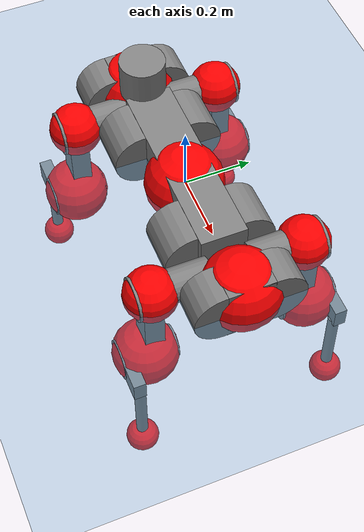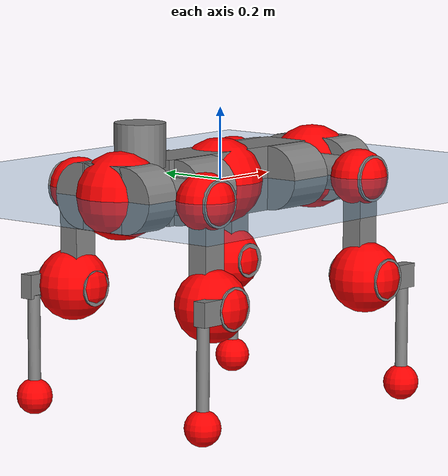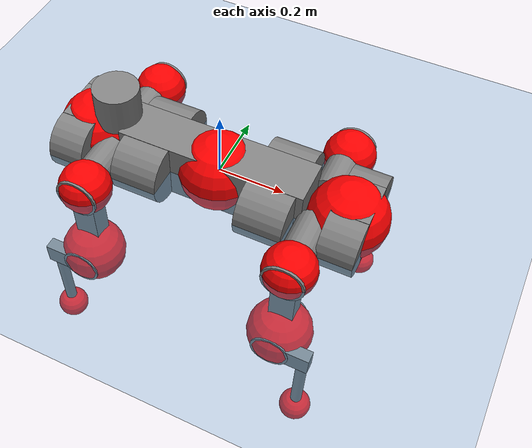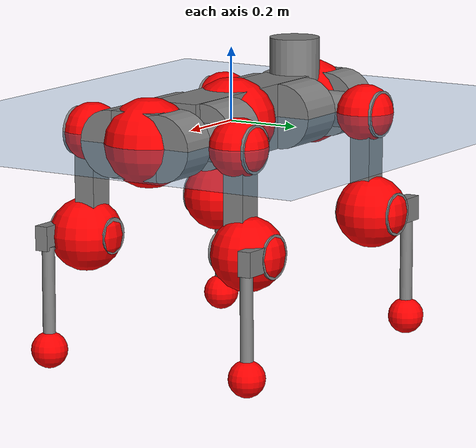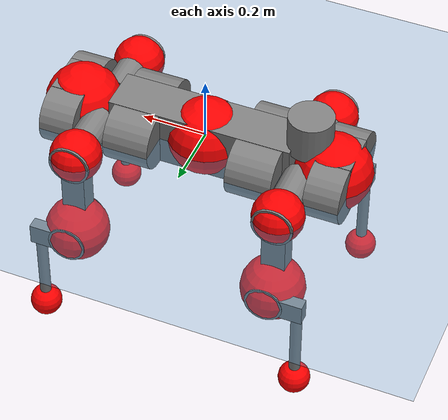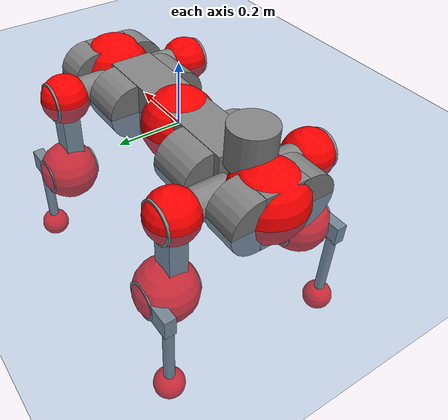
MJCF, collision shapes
<mujoco model="anymal_c">
  <compiler angle="radian" assetdir="assets" balanceinertia="true" inertiafromgeom="false"/>

  <option timestep="0.005" density="1.2" viscosity="2e-05"/>

  <size nkey="1"/>

  <visual>
    <quality shadowsize="8192"/>
    <map shadowclip="0.5"/>
  </visual>

  <default>
    <default class="/">
      <material specular="0" shininess="0.25"/>
      <geom contype="0" conaffinity="0" group="1" solref="-1000 -80"/>
      <site size="0.01 0.005 0.005" group="5"/>
      <general forcelimited="true" forcerange="-80 80" biastype="affine" gainprm="80" biasprm="0 -80 -2"/>
      <default class="anymal_c">
        <joint armature="0.01" damping="0.01" frictionloss="0.1"/>
        <default class="visual">
          <geom type="mesh" group="2"/>
          <default class="visual_zflip"/>
        </default>
        <default class="collision">
          <geom type="cylinder" group="3"/>
          <default class="foot">
            <geom size="0.03 0 0" type="sphere" condim="6" priority="1" friction="0.8 0.02 0.01" solimp="0.015 1 0.03"/>
          </default>
        </default>
      </default>
      <default class="reward_collision_sphere">
        <geom group="5" rgba="1 0 0 1"/>
      </default>
    </default>
  </default>

  <asset>
    <texture type="skybox" colorspace="auto" name="//unnamed_texture_0" builtin="gradient" rgb1="0.95 0.95 0.95" rgb2="0.95 0.95 0.95" width="100" height="600"/>
    <texture type="2d" colorspace="auto" name="texplane" builtin="checker" rgb1="0.345 0.575 0.748" rgb2="0.345 0.575 0.748" markrgb="1 1 1" width="512" height="512"/>
    <texture type="2d" colorspace="linear" name="base" file="base.png"/>
    <texture type="2d" colorspace="linear" name="top_shell" file="top_shell.png"/>
    <texture type="2d" colorspace="linear" name="bottom_shell" file="bottom_shell.png"/>
    <texture type="2d" colorspace="linear" name="remote" file="remote.png"/>
    <texture type="2d" colorspace="linear" name="hatch" file="hatch.png"/>
    <texture type="2d" colorspace="linear" name="handle" file="handle.png"/>
    <texture type="2d" colorspace="linear" name="face" file="face.png"/>
    <texture type="2d" colorspace="linear" name="battery" file="battery.png"/>
    <texture type="2d" colorspace="linear" name="lidar_cage" file="lidar_cage.png"/>
    <texture type="2d" colorspace="linear" name="depth_camera" file="depth_camera.png"/>
    <texture type="2d" colorspace="linear" name="wide_angle_camera" file="wide_angle_camera.png"/>
    <texture type="2d" colorspace="linear" name="lidar" file="lidar.png"/>
    <texture type="2d" colorspace="linear" name="drive" file="drive.png"/>
    <texture type="2d" colorspace="linear" name="hip_l" file="hip_l.png"/>
    <texture type="2d" colorspace="linear" name="shank_l" file="shank_l.png"/>
    <texture type="2d" colorspace="linear" name="foot" file="foot.png"/>
    <texture type="2d" colorspace="linear" name="thigh" file="thigh.png"/>
    <texture type="2d" colorspace="linear" name="shank_r" file="shank_r.png"/>
    <texture type="2d" colorspace="linear" name="hip_r" file="hip_r.png"/>
    <material name="MatPlane" class="/" texture="texplane" texuniform="true" texrepeat="2 2" specular="0.9" shininess="0.5"/>
    <material name="black_plastic" class="/" rgba="0.007 0.007 0.007 1"/>
    <material name="green" class="/" rgba="0.052 0.178 0.033 1"/>
    <material name="red" class="/" rgba="0.178 0.006 0.005 1"/>
    <material name="yellow" class="/" rgba="0.178 0.119 0.006 1"/>
    <material name="lwl" class="/" rgba="0.8 0.8 0.8 1"/>
    <material name="base" class="/" texture="base"/>
    <material name="top_shell" class="/" texture="top_shell"/>
    <material name="bottom_shell" class="/" texture="bottom_shell"/>
    <material name="hip_l" class="/" texture="hip_l"/>
    <material name="thigh" class="/" texture="thigh"/>
    <material name="shank_l" class="/" texture="shank_l"/>
    <material name="foot" class="/" texture="foot"/>
    <material name="hip_r" class="/" texture="hip_r"/>
    <material name="shank" class="/" texture="shank_r"/>
    <material name="hatch" class="/" texture="hatch"/>
    <material name="remote" class="/" texture="remote"/>
    <material name="handle" class="/" texture="handle"/>
    <material name="face" class="/" texture="face"/>
    <material name="depth_camera" class="/" texture="depth_camera"/>
    <material name="wide_angle_camera" class="/" texture="wide_angle_camera"/>
    <material name="battery" class="/" texture="battery"/>
    <material name="lidar_cage" class="/" texture="lidar_cage"/>
    <material name="lidar" class="/" texture="lidar"/>
    <material name="drive" class="/" texture="drive"/>
    <mesh name="base_0" class="/" file="base_0.obj"/>
    <mesh name="base_1" class="/" file="base_1.obj"/>
    <mesh name="base_2" class="/" file="base_2.obj"/>
    <mesh name="base_3" class="/" file="base_3.obj"/>
    <mesh name="base_4" class="/" file="base_4.obj"/>
    <mesh name="base_5" class="/" file="base_5.obj"/>
    <mesh name="top_shell" class="/" file="top_shell.obj"/>
    <mesh name="bottom_shell" class="/" file="bottom_shell.obj"/>
    <mesh name="remote" class="/" file="remote.obj"/>
    <mesh name="handle" class="/" file="handle.obj"/>
    <mesh name="face" class="/" file="face.obj"/>
    <mesh name="wide_angle_camera" class="/" file="wide_angle_camera.obj"/>
    <mesh name="depth_camera" class="/" file="depth_camera.obj"/>
    <mesh name="battery" class="/" file="battery.obj"/>
    <mesh name="lidar_cage" class="/" file="lidar_cage.obj"/>
    <mesh name="lidar" class="/" file="lidar.obj"/>
    <mesh name="drive" class="/" file="drive.obj"/>
    <mesh name="hip_l" class="/" file="hip_l.obj"/>
    <mesh name="thigh" class="/" file="thigh.obj"/>
    <mesh name="shank_l" class="/" file="shank_l.obj"/>
    <mesh name="foot" class="/" file="foot.obj"/>
    <mesh name="hip_r" class="/" file="hip_r.obj"/>
    <mesh name="hatch" class="/" file="hatch.obj"/>
    <mesh name="shank_r" class="/" file="shank_r.obj"/>
  </asset>

  <worldbody>
    <geom name="floor" class="/" size="100 100 0.125" type="plane" group="0" material="MatPlane"/>
    <light name="toplight_shadow" class="/" pos="0 0 5" dir="0.0990148 0.0990148 -0.990148" type="directional" ambient="0.04 0.04 0.04" diffuse="0.55 0.55 0.55" specular="0.12 0.12 0.12"/>
    <light name="toplight_fill" class="/" pos="0 0 5" dir="0.0990148 0.0990148 -0.990148" type="directional" castshadow="false" ambient="0.04 0.04 0.04" diffuse="0.3 0.3 0.3" specular="0.08 0.08 0.08"/>
    <body name="trunk" childclass="anymal_c" pos="-0.00456639 -0.000924817 -0.00154171" quat="0.999999 0.00131504 0.000874514 0.000407682">
      <inertial pos="0.00610865 0.00144944 0.0443418" quat="0.496976 0.49177 0.50345 0.507656" mass="19.9802" diaginertia="0.36671 1.03953 0.191404"/>
      <joint name="//unnamed_joint_0" type="free" armature="0" damping="0" frictionloss="0"/>
      <geom name="//unnamed_geom_1" class="visual" material="green" mesh="base_0"/>
      <geom name="//unnamed_geom_2" class="visual" material="yellow" mesh="base_1"/>
      <geom name="//unnamed_geom_3" class="visual" material="red" mesh="base_2"/>
      <geom name="//unnamed_geom_4" class="visual" material="black_plastic" mesh="base_3"/>
      <geom name="//unnamed_geom_5" class="visual" material="lwl" mesh="base_4"/>
      <geom name="//unnamed_geom_6" class="visual" material="base" mesh="base_5"/>
      <geom name="trunk_1" class="collision" size="0.286302 0.0691073 0.0888522" type="box"/>
      <geom name="trunk_2" class="collision" size="0.0888522 0.0715754" pos="0.193776 0.0773391 0" quat="0.707107 0 0.707107 0"/>
      <geom name="trunk_3" class="collision" size="0.0888522 0.0715754" pos="-0.193776 0.0773391 0" quat="0.707107 0 0.707107 0"/>
      <geom name="trunk_4" class="collision" size="0.0888522 0.0715754" pos="0.193776 -0.0773391 0" quat="0.707107 0 0.707107 0"/>
      <geom name="trunk_5" class="collision" size="0.0888522 0.0715754" pos="-0.193776 -0.0773391 0" quat="0.707107 0 0.707107 0"/>
      <geom name="//unnamed_geom_12" class="visual" material="top_shell" mesh="top_shell"/>
      <geom name="//unnamed_geom_13" class="visual" material="bottom_shell" mesh="bottom_shell"/>
      <geom name="//unnamed_geom_14" class="visual" material="remote" mesh="remote"/>
      <geom name="//unnamed_geom_15" class="visual" material="handle" mesh="handle"/>
      <geom name="//unnamed_geom_16" class="visual" pos="0.369289 0 0" quat="1 0 0 0" material="face" mesh="face"/>
      <geom name="trunk_6" class="collision" size="0.0542986 0.0691073 0.0888522" pos="0.41829 0 0" type="box"/>
      <geom name="//unnamed_geom_18" class="collision" size="0.0888522 0.0542986" pos="0.41829 0.0773391 0" quat="0.707107 0 0.707107 0"/>
      <geom name="//unnamed_geom_19" class="collision" size="0.0888522 0.0542986" pos="0.41829 -0.0773391 0" quat="0.707107 0 0.707107 0"/>
      <geom name="//unnamed_geom_20" class="visual" pos="0.411299 0 -0.0287767" quat="0.965926 0 0.258819 0" material="depth_camera" mesh="depth_camera"/>
      <geom name="//unnamed_geom_21" class="visual" pos="0.457045 0 0.0144606" material="wide_angle_camera" mesh="wide_angle_camera"/>
      <geom name="//unnamed_geom_22" class="visual_zflip" pos="-0.369289 0 0" quat="0 0 0 1" material="face" mesh="face"/>
      <geom name="trunk_7" class="collision" size="0.0542986 0.0691073 0.0888522" pos="-0.41829 0 0" quat="0 0 0 1" type="box"/>
      <geom name="//unnamed_geom_24" class="collision" size="0.0888522 0.0542986" pos="-0.41829 -0.0773391 0" quat="0 -0.707107 0 0.707107"/>
      <geom name="//unnamed_geom_25" class="collision" size="0.0888522 0.0542986" pos="-0.41829 0.0773391 0" quat="0 -0.707107 0 0.707107"/>
      <geom name="//unnamed_geom_26" class="visual" pos="-0.411299 0 -0.0287767" quat="0 -0.258819 0 0.965926" material="depth_camera" mesh="depth_camera"/>
      <geom name="//unnamed_geom_27" class="visual_zflip" pos="-0.457045 0 0.0144606" quat="0 0 0 1" material="wide_angle_camera" mesh="wide_angle_camera"/>
      <geom name="//unnamed_geom_28" class="visual" material="battery" mesh="battery"/>
      <geom name="//unnamed_geom_29" class="visual" pos="0 0.0872865 0.0274911" quat="0.683013 -0.183013 0.183013 0.683013" material="depth_camera" mesh="depth_camera"/>
      <geom name="//unnamed_geom_30" class="visual" pos="0 -0.0872865 0.0274911" quat="0.683013 0.183013 0.183013 -0.683013" material="depth_camera" mesh="depth_camera"/>
      <geom name="//unnamed_geom_31" class="visual" pos="-0.324297 0 0.0709988" quat="1 0 0 0" material="lidar_cage" mesh="lidar_cage"/>
      <geom name="trunk_8" class="collision" size="0.0691073 0.0592348" pos="-0.324297 0 0.128957"/>
      <geom name="//unnamed_geom_33" class="visual" pos="-0.324297 8.40426e-05 0.137361" quat="0.707107 0 0 -0.707107" material="lidar" mesh="lidar"/>
      <geom name="//unnamed_geom_34" class="visual" pos="0.267189 0.114854 2.39559e-09" quat="0.258819 0.965926 0 0" material="drive" mesh="drive"/>
      <geom name="//unnamed_geom_35" class="visual" pos="0.267189 -0.114854 -2.39559e-09" quat="0.258819 -0.965926 0 0" material="drive" mesh="drive"/>
      <geom name="//unnamed_geom_36" class="visual" pos="-0.267189 0.114854 -2.39559e-09" quat="0 0 0.965926 -0.258819" material="drive" mesh="drive"/>
      <geom name="//unnamed_geom_37" class="visual" pos="-0.267189 -0.114854 2.39559e-09" quat="0 0 -0.965926 -0.258819" material="drive" mesh="drive"/>
      <geom name="//unnamed_geom_38" class="visual" pos="0.103347 0 0.0705158" quat="1 0 0 0" material="hatch" mesh="hatch"/>
      <geom name="//unnamed_geom_39" class="reward_collision_sphere" size="0.11847"/>
      <geom name="//unnamed_geom_40" class="reward_collision_sphere" size="0.11847" pos="0.400917 0 0"/>
      <geom name="//unnamed_geom_41" class="reward_collision_sphere" size="0.11847" pos="-0.400917 0 0"/>
      <site name="imu" pos="0.215763 0.0140989 0.0303535" size="0.00987247"/>
      <camera name="track" pos="0 -2.20969 0" quat="0.707107 0.707107 0 0" mode="trackcom"/>
      <camera name="ego_camera" pos="0.400917 0 -0.0386388" quat="-0.5 -0.5 0.5 0.5"/>
      <body name="LF_HIP" pos="0.267979 0.112851 0.00136754" quat="0.259069 0.965858 0.000411807 -0.000713615">
        <inertial pos="0.0532708 -0.0160531 -0.0099345" quat="-0.128189 0.705108 -0.132757 0.684664" mass="2.70708" diaginertia="0.00319449 0.00847853 0.00276635"/>
        <joint name="LF_HAA" pos="0 0 0" axis="0.999773 0.0186762 0.010259" range="-0.801911 0.450146" armature="0.0102653" damping="0.0168714" frictionloss="0.0968092"/>
        <geom name="//unnamed_geom_42" class="visual" pos="0 0.000140922 -2.31463e-05" quat="0.258819 -0.965926 0 0" material="hip_l" mesh="hip_l"/>
        <geom name="//unnamed_geom_43" class="visual" pos="0.0533665 -0.0674321 -0.0379047" quat="0.183013 -0.683013 0.683013 0.183013" material="drive" mesh="drive"/>
        <geom name="//unnamed_geom_44" class="collision" size="0.0493623 0.0691073" pos="0.0533665 -0.0132137 -0.00667002" quat="-0.353553 -0.612372 0.612372 -0.353553"/>
        <body name="LF_THIGH" pos="0.0549222 -0.0809122 -0.0393617" quat="0.183585 -0.683509 0.682336 0.183113">
          <inertial pos="0.0269781 -9.02924e-05 -0.23425" quat="0.993286 -0.00511595 -0.0794066 0.0839718" mass="2.95203" diaginertia="0.0174275 0.0502632 0.00333075"/>
          <joint name="LF_HFE" pos="0 0 0" axis="0.99995 0.00933471 -0.00346071" stiffness="0.02361" range="-3.11099 3.1437" armature="0.00893752" damping="0.00273628" frictionloss="0.0873216"/>
          <geom name="//unnamed_geom_45" class="visual" pos="-0.00425613 -6.70666e-06 0" quat="0.707107 0 0 -0.707107" material="thigh" mesh="thigh"/>
          <geom name="//unnamed_geom_46" class="collision" size="0.064171 0.0394899" pos="0.035637 0 0" quat="0.5 0.5 -0.5 -0.5"/>
          <geom name="//unnamed_geom_47" class="collision" size="0.0370218 0.0296174 0.139512" pos="0.0267278 0 -0.136505" quat="0.707107 0 0 -0.707107" type="box"/>
          <geom name="//unnamed_geom_48" class="visual" pos="0.0893599 0 -0.275301" quat="1 0 0 0" material="drive" mesh="drive"/>
          <geom name="//unnamed_geom_49" class="collision" size="0.0493623 0.0691073" pos="0.0269951 0 -0.275301" quat="0.707107 0 0.707107 0"/>
          <geom name="//unnamed_geom_50" class="reward_collision_sphere" size="0.0789797" pos="0.0222732 0 0"/>
          <body name="LF_SHANK" pos="0.0917699 0.00308048 -0.276543" quat="1 -0.000110879 0.000140059 1.84475e-06">
            <inertial pos="0.00656813 -0.0667001 -0.0780423" quat="0.992437 -0.120872 -0.00832198 -0.0197565" mass="0.562667" diaginertia="0.00531602 0.0143054 0.000911485"/>
            <joint name="LF_KFE" pos="0 0 0" axis="0.999931 0.00413993 -0.0109591" range="-3.07789 3.1511" armature="0.0104395" damping="0.0146381" frictionloss="0.104368"/>
            <geom name="//unnamed_geom_51" class="visual" pos="-0.00138783 -0.00739998 0" quat="0.707107 0 0 -0.707107" material="shank_l" mesh="shank_l"/>
            <geom name="LF_kfe_act" class="collision" size="0.0592348 0.0197449" pos="0.0178185 0 0" quat="0.5 0.5 -0.5 -0.5"/>
            <geom name="//unnamed_geom_53" class="collision" size="0.0567657 0.0333196 0.0187577" pos="0.0178185 -0.0635274 0" quat="0.5 0.5 -0.5 -0.5" type="box"/>
            <geom name="//unnamed_geom_54" class="visual" pos="0.0116269 -0.0995557 -0.326469" quat="0.382683 0 0 -0.92388" material="foot" mesh="foot"/>
            <geom name="LF_calf" class="collision" size="0.0172768 0.139451" pos="0.0116266 -0.097171 -0.163234" quat="0.707107 0 0 -0.707107"/>
            <geom name="LF_foot" class="foot" size="0.0214073" pos="0.0116266 -0.097171 -0.304735" quat="0.707107 0 0 -0.707107"/>
            <geom name="//unnamed_geom_57" class="reward_collision_sphere" size="0.0987247" pos="-0.0445463 0 0"/>
            <geom name="//unnamed_geom_58" class="reward_collision_sphere" size="0.0493623" pos="0.0116266 -0.097171 -0.304735"/>
            <site name="LF_foot" class="foot" pos="0.0116266 -0.097171 -0.304735" quat="0.707107 0 0 -0.707107" size="0.00987247"/>
          </body>
        </body>
      </body>
      <body name="RF_HIP" pos="0.270126 -0.11447 0.00337313" quat="0.258366 -0.966047 -2.57831e-05 0.00038171">
        <inertial pos="0.0517998 0.0195195 -0.00748761" quat="0.132599 0.673319 0.132665 0.715163" mass="2.7047" diaginertia="0.00329189 0.00800892 0.00273488"/>
        <joint name="RF_HAA" pos="0 0 0" axis="0.999989 0.00363343 -0.0028844" range="-0.445706 0.728287" armature="0.0110227" damping="0.0169657" frictionloss="0.108857"/>
        <geom name="//unnamed_geom_59" class="visual" pos="0 -0.000140921 -2.31462e-05" quat="0.258819 0.965926 0 0" material="hip_r" mesh="hip_r"/>
        <geom name="//unnamed_geom_60" class="visual" pos="0.0533665 0.0674321 -0.0379047" quat="0.183013 0.683013 0.683013 -0.183013" material="drive" mesh="drive"/>
        <geom name="//unnamed_geom_61" class="collision" size="0.0493623 0.0691073" pos="0.0533665 0.0132137 -0.00667002" quat="-0.353553 0.612372 0.612372 0.353553"/>
        <body name="RF_THIGH" pos="0.052922 0.0847573 -0.0418263" quat="0.183179 0.682812 0.683146 -0.1831">
          <inertial pos="0.0284039 0.00107013 -0.238443" quat="0.992795 -0.00514775 -0.0806851 0.0884351" mass="2.91324" diaginertia="0.0163952 0.0468592 0.00337566"/>
          <joint name="RF_HFE" pos="0 0 0" axis="0.999998 0.000700498 0.00177022" stiffness="0.00014271" range="-3.18538 3.10945" armature="0.00966472" damping="0.000810263" frictionloss="0.107436"/>
          <geom name="//unnamed_geom_62" class="visual" pos="-0.00425613 -6.70666e-06 0" quat="0.707107 0 0 -0.707107" material="thigh" mesh="thigh"/>
          <geom name="//unnamed_geom_63" class="collision" size="0.064171 0.0394899" pos="0.035637 0 0" quat="0.5 0.5 0.5 0.5"/>
          <geom name="//unnamed_geom_64" class="collision" size="0.0370218 0.0296174 0.139512" pos="0.0267278 0 -0.136505" quat="0.707107 0 0 0.707107" type="box"/>
          <geom name="//unnamed_geom_65" class="visual" pos="0.0893599 0 -0.275301" quat="1 0 0 0" material="drive" mesh="drive"/>
          <geom name="//unnamed_geom_66" class="collision" size="0.0493623 0.0691073" pos="0.0269951 0 -0.275301" quat="0.707107 0 0.707107 0"/>
          <geom name="//unnamed_geom_67" class="reward_collision_sphere" size="0.0789797" pos="0.0222732 0 0"/>
          <body name="RF_SHANK" pos="0.0900454 0.00151871 -0.277869" quat="1 -2.44896e-05 -3.86173e-06 3.72711e-06">
            <inertial pos="0.00593793 0.0684224 -0.0783377" quat="0.992693 0.120012 -0.000433888 0.0125685" mass="0.567114" diaginertia="0.00571728 0.0152812 0.000953817"/>
            <joint name="RF_KFE" pos="0 0 0" axis="0.999829 0.00127822 -0.0184221" stiffness="0.00873902" range="-3.09993 3.12996" armature="0.00865965" damping="0.0012173" frictionloss="0.0887052"/>
            <geom name="//unnamed_geom_68" class="visual" pos="-0.00138782 0.00739997 0" quat="0.707107 0 0 0.707107" material="shank" mesh="shank_r"/>
            <geom name="RF_kfe_act" class="collision" size="0.0592348 0.0197449" pos="0.0178185 0 0" quat="0.5 0.5 0.5 0.5"/>
            <geom name="//unnamed_geom_70" class="collision" size="0.0567657 0.0333196 0.0187577" pos="0.0178185 0.0635274 0" quat="0.5 0.5 0.5 0.5" type="box"/>
            <geom name="//unnamed_geom_71" class="visual" pos="0.0116262 0.0995557 -0.326469" quat="0.382683 0 0 0.92388" material="foot" mesh="foot"/>
            <geom name="RF_calf" class="collision" size="0.0172768 0.139451" pos="0.0116266 0.097171 -0.163234" quat="0.707107 0 0 0.707107"/>
            <geom name="RF_foot" class="foot" size="0.0255028" pos="0.0116266 0.097171 -0.304735" quat="0.707107 0 0 0.707107"/>
            <geom name="//unnamed_geom_74" class="reward_collision_sphere" size="0.0987247" pos="-0.0445463 0 0"/>
            <geom name="//unnamed_geom_75" class="reward_collision_sphere" size="0.0493623" pos="0.0116266 0.097171 -0.304735"/>
            <site name="RF_foot" class="foot" pos="0.0116266 0.097171 -0.304735" quat="0.707107 0 0 0.707107" size="0.00987247"/>
          </body>
        </body>
      </body>
      <body name="LH_HIP" pos="-0.265408 0.115228 0.000686678" quat="0.000169326 0.000341267 0.96588 -0.258991">
        <inertial pos="0.0527819 0.0131238 -0.00724217" quat="0.116894 0.671146 0.120494 0.722066" mass="2.63936" diaginertia="0.00344776 0.00838686 0.00274898"/>
        <joint name="LH_HAA" pos="0 0 0" axis="0.999987 0.00396131 0.00334741" range="-0.537476 0.710082" armature="0.0106369" damping="0" frictionloss="0.085555"/>
        <geom name="//unnamed_geom_76" class="visual" pos="0 -0.000140921 -2.31462e-05" quat="-0.258819 -0.965926 0 0" material="hip_r" mesh="hip_r"/>
        <geom name="//unnamed_geom_77" class="visual" pos="0.0533665 0.0674321 -0.0379047" quat="0.183013 0.683013 0.683013 -0.183013" material="drive" mesh="drive"/>
        <geom name="//unnamed_geom_78" class="collision" size="0.0493623 0.0691073" pos="0.0533665 0.0132137 -0.00667002" quat="-0.353553 0.612372 0.612372 0.353553"/>
        <body name="LH_THIGH" pos="0.0515052 0.0827757 -0.0430451" quat="0.181689 0.68345 0.682978 -0.182829">
          <inertial pos="0.0279591 -5.69071e-05 -0.234831" quat="0.993596 -0.0133292 -0.0768348 0.0817618" mass="2.90431" diaginertia="0.0175787 0.0522386 0.00363241"/>
          <joint name="LH_HFE" pos="0 0 0" axis="0.999999 -0.000698291 0.00121536" range="-3.13217 3.15851" armature="0.00940106" damping="0.00134767" frictionloss="0.0997893"/>
          <geom name="//unnamed_geom_79" class="visual" pos="-0.00425613 -6.70666e-06 0" quat="0.707107 0 0 -0.707107" material="thigh" mesh="thigh"/>
          <geom name="//unnamed_geom_80" class="collision" size="0.064171 0.0394899" pos="0.035637 0 0" quat="0.5 0.5 -0.5 -0.5"/>
          <geom name="//unnamed_geom_81" class="collision" size="0.0370218 0.0296174 0.139512" pos="0.0267278 0 -0.136505" quat="0.707107 0 0 -0.707107" type="box"/>
          <geom name="//unnamed_geom_82" class="visual" pos="0.0893599 0 -0.275301" quat="1 0 0 0" material="drive" mesh="drive"/>
          <geom name="//unnamed_geom_83" class="collision" size="0.0493623 0.0691073" pos="0.0269951 0 -0.275301" quat="0.707107 0 0.707107 0"/>
          <geom name="//unnamed_geom_84" class="reward_collision_sphere" size="0.0789797" pos="0.0222732 0 0"/>
          <body name="LH_SHANK" pos="0.0894705 -0.00076739 -0.272231" quat="1 0.000144247 0.000907172 1.22025e-06">
            <inertial pos="0.00253484 0.0634721 -0.0770782" quat="0.993494 0.110603 -0.000750263 0.0271326" mass="0.58425" diaginertia="0.00580369 0.0157795 0.00102164"/>
            <joint name="LH_KFE" pos="0 0 0" axis="0.999951 0.00458596 0.00872252" stiffness="0.0215222" range="-3.1413 3.17414" armature="0.0102553" damping="0.00708105" frictionloss="0.079436"/>
            <geom name="//unnamed_geom_85" class="visual" pos="-0.00138782 0.00739997 0" quat="-0.707107 0 0 -0.707107" material="shank" mesh="shank_r"/>
            <geom name="LH_kfe_act" class="collision" size="0.0592348 0.0197449" pos="0.0178185 0 0" quat="0.5 0.5 -0.5 -0.5"/>
            <geom name="//unnamed_geom_87" class="collision" size="0.0567657 0.0333196 0.0187577" pos="0.0178185 0.0635274 0" quat="0.5 0.5 -0.5 -0.5" type="box"/>
            <geom name="//unnamed_geom_88" class="visual" pos="0.0116262 0.0995557 -0.326469" quat="-0.382683 0 0 -0.92388" material="foot" mesh="foot"/>
            <geom name="LH_calf" class="collision" size="0.0172768 0.139451" pos="0.0116266 0.097171 -0.163234" quat="0.707107 0 0 -0.707107"/>
            <geom name="LH_foot" class="foot" size="0.029817" pos="0.0116266 0.097171 -0.304735" quat="0.707107 0 0 -0.707107"/>
            <geom name="//unnamed_geom_91" class="reward_collision_sphere" size="0.0987247" pos="-0.0445463 0 0"/>
            <geom name="//unnamed_geom_92" class="reward_collision_sphere" size="0.0493623" pos="0.0116266 0.097171 -0.304735"/>
            <site name="LH_foot" class="foot" pos="0.0116266 0.097171 -0.304735" quat="0.707107 0 0 -0.707107" size="0.00987247"/>
          </body>
        </body>
      </body>
      <body name="RH_HIP" pos="-0.264904 -0.115425 0.00219474" quat="0.00053152 -0.000756588 -0.965514 -0.260348">
        <inertial pos="0.046494 -0.0177562 -0.00417285" quat="-0.129018 0.708636 -0.13602 0.680212" mass="2.67593" diaginertia="0.00329437 0.00805865 0.00270928"/>
        <joint name="RH_HAA" pos="0 0 0" axis="0.99977 -0.0205465 -0.00614286" range="-0.676989 0.539949" armature="0.00904918" damping="0.0047575" frictionloss="0.110714"/>
        <geom name="//unnamed_geom_93" class="visual" pos="0 0.000140922 -2.31463e-05" quat="-0.258819 0.965926 0 0" material="hip_l" mesh="hip_l"/>
        <geom name="//unnamed_geom_94" class="visual" pos="0.0533665 -0.0674321 -0.0379047" quat="-0.183013 0.683013 -0.683013 -0.183013" material="drive" mesh="drive"/>
        <geom name="//unnamed_geom_95" class="collision" size="0.0493623 0.0691073" pos="0.0533665 -0.0132137 -0.00667002" quat="0.353553 0.612372 -0.612372 0.353553"/>
        <body name="RH_THIGH" pos="0.0507585 -0.0769442 -0.0366659" quat="-0.183064 0.683062 -0.682964 -0.18296">
          <inertial pos="0.0260294 -0.000918814 -0.237354" quat="0.993311 -0.00830435 -0.0782268 0.0845274" mass="3.0362" diaginertia="0.0165045 0.0492735 0.00349311"/>
          <joint name="RH_HFE" pos="0 0 0" axis="0.999937 0.0111003 -0.00162656" stiffness="0.00381467" range="-3.13488 3.09742" armature="0.00909629" damping="0.00459575" frictionloss="0.110806"/>
          <geom name="//unnamed_geom_96" class="visual" pos="-0.00425613 -6.70666e-06 0" quat="0.707107 0 0 -0.707107" material="thigh" mesh="thigh"/>
          <geom name="//unnamed_geom_97" class="collision" size="0.064171 0.0394899" pos="0.035637 0 0" quat="0.5 0.5 0.5 0.5"/>
          <geom name="//unnamed_geom_98" class="collision" size="0.0370218 0.0296174 0.139512" pos="0.0267278 0 -0.136505" quat="0.707107 0 0 0.707107" type="box"/>
          <geom name="//unnamed_geom_99" class="visual" pos="0.0893599 0 -0.275301" quat="1 0 0 0" material="drive" mesh="drive"/>
          <geom name="//unnamed_geom_100" class="collision" size="0.0493623 0.0691073" pos="0.0269951 0 -0.275301" quat="0.707107 0 0.707107 0"/>
          <geom name="//unnamed_geom_101" class="reward_collision_sphere" size="0.0789797" pos="0.0222732 0 0"/>
          <body name="RH_SHANK" pos="0.0881195 0.00229761 -0.272907" quat="1 5.65968e-06 0.000120488 -2.99793e-05">
            <inertial pos="0.00558833 -0.0653994 -0.0777032" quat="0.993508 -0.111187 -0.00153387 -0.0240121" mass="0.562129" diaginertia="0.0058894 0.0152233 0.000926182"/>
            <joint name="RH_KFE" pos="0 0 0" axis="0.999919 -0.0118101 0.00465065" range="-3.16814 3.15092" armature="0.00862388" damping="0" frictionloss="0.0859638"/>
            <geom name="//unnamed_geom_102" class="visual" pos="-0.00138783 -0.00739998 0" quat="0.707107 0 0 -0.707107" material="shank_l" mesh="shank_l"/>
            <geom name="RH_kfe_act" class="collision" size="0.0592348 0.0197449" pos="0.0178185 0 0" quat="0.5 0.5 0.5 0.5"/>
            <geom name="//unnamed_geom_104" class="collision" size="0.0567657 0.0333196 0.0187577" pos="0.0178185 -0.0635274 0" quat="0.5 0.5 0.5 0.5" type="box"/>
            <geom name="//unnamed_geom_105" class="visual" pos="0.0116269 -0.0995557 -0.326469" quat="0.382683 0 0 -0.92388" material="foot" mesh="foot"/>
            <geom name="RH_calf" class="collision" size="0.0172768 0.139451" pos="0.0116266 -0.097171 -0.163234" quat="0.707107 0 0 0.707107"/>
            <geom name="RH_foot" class="foot" size="0.0324092" pos="0.0116266 -0.097171 -0.304735" quat="0.707107 0 0 0.707107"/>
            <geom name="//unnamed_geom_108" class="reward_collision_sphere" size="0.0987247" pos="-0.0445463 0 0"/>
            <geom name="//unnamed_geom_109" class="reward_collision_sphere" size="0.0493623" pos="0.0116266 -0.097171 -0.304735"/>
            <site name="RH_foot" class="foot" pos="0.0116266 -0.097171 -0.304735" quat="0.707107 0 0 0.707107" size="0.00987247"/>
          </body>
        </body>
      </body>
    </body>
  </worldbody>

  <contact>
    <pair class="/" geom1="floor" geom2="LF_foot" name="//unnamed_contact_0"/>
    <pair class="/" geom1="floor" geom2="RF_foot" name="//unnamed_contact_1"/>
    <pair class="/" geom1="floor" geom2="LH_foot" name="//unnamed_contact_2"/>
    <pair class="/" geom1="floor" geom2="RH_foot" name="//unnamed_contact_3"/>
  </contact>

  <actuator>
    <general name="LF_HAA" class="/" joint="LF_HAA" forcerange="-79.9027 79.9027" gainprm="81.2014" biasprm="0 -81.2014 -2.10585"/>
    <general name="LF_HFE" class="/" joint="LF_HFE" forcerange="-75.6935 75.6935" gainprm="81.2014" biasprm="0 -81.2014 -2.10585"/>
    <general name="LF_KFE" class="/" joint="LF_KFE" forcerange="-75.2174 75.2174" gainprm="81.2014" biasprm="0 -81.2014 -2.10585"/>
    <general name="RF_HAA" class="/" joint="RF_HAA" forcerange="-81.2786 81.2786" gainprm="81.2014" biasprm="0 -81.2014 -2.10585"/>
    <general name="RF_HFE" class="/" joint="RF_HFE" forcerange="-83.4534 83.4534" gainprm="81.2014" biasprm="0 -81.2014 -2.10585"/>
    <general name="RF_KFE" class="/" joint="RF_KFE" forcerange="-81.1228 81.1228" gainprm="81.2014" biasprm="0 -81.2014 -2.10585"/>
    <general name="LH_HAA" class="/" joint="LH_HAA" forcerange="-68.1703 68.1703" gainprm="81.2014" biasprm="0 -81.2014 -2.10585"/>
    <general name="LH_HFE" class="/" joint="LH_HFE" forcerange="-75.4014 75.4014" gainprm="81.2014" biasprm="0 -81.2014 -2.10585"/>
    <general name="LH_KFE" class="/" joint="LH_KFE" forcerange="-89.7326 89.7326" gainprm="81.2014" biasprm="0 -81.2014 -2.10585"/>
    <general name="RH_HAA" class="/" joint="RH_HAA" forcerange="-79.5422 79.5422" gainprm="81.2014" biasprm="0 -81.2014 -2.10585"/>
    <general name="RH_HFE" class="/" joint="RH_HFE" forcerange="-69.4253 69.4253" gainprm="81.2014" biasprm="0 -81.2014 -2.10585"/>
    <general name="RH_KFE" class="/" joint="RH_KFE" forcerange="-85.3662 85.3662" gainprm="81.2014" biasprm="0 -81.2014 -2.10585"/>
  </actuator>

  <sensor>
    <gyro site="imu" name="imu_angular_velocity"/>
    <velocimeter site="imu" name="imu_linear_velocity"/>
    <framelinvel objtype="site" objname="LF_foot" name="LF_foot_global_linear_velocity"/>
    <framelinvel objtype="site" objname="RF_foot" name="RF_foot_global_linear_velocity"/>
    <framelinvel objtype="site" objname="LH_foot" name="LH_foot_global_linear_velocity"/>
    <framelinvel objtype="site" objname="RH_foot" name="RH_foot_global_linear_velocity"/>
  </sensor>

  <keyframe>
    <key name="home" qpos="0 0 0.55 1 0 0 0 0 0.4 -0.8 0 -0.4 0.8 0 -0.4 0.8 0 0.4 -0.8"/>
  </keyframe>
</mujoco>
